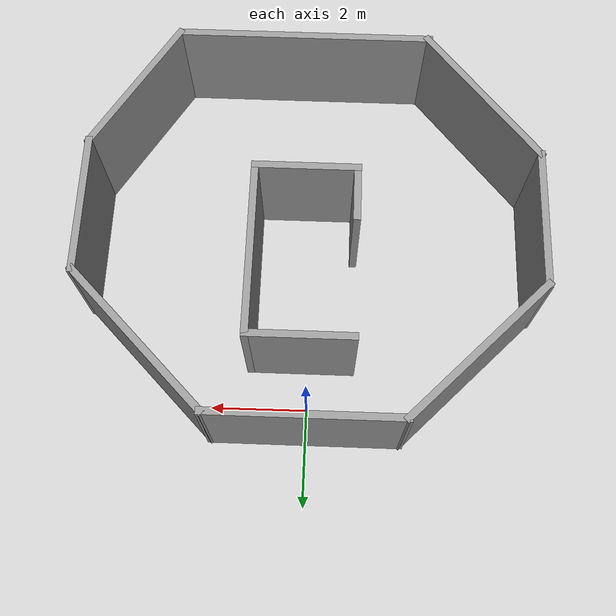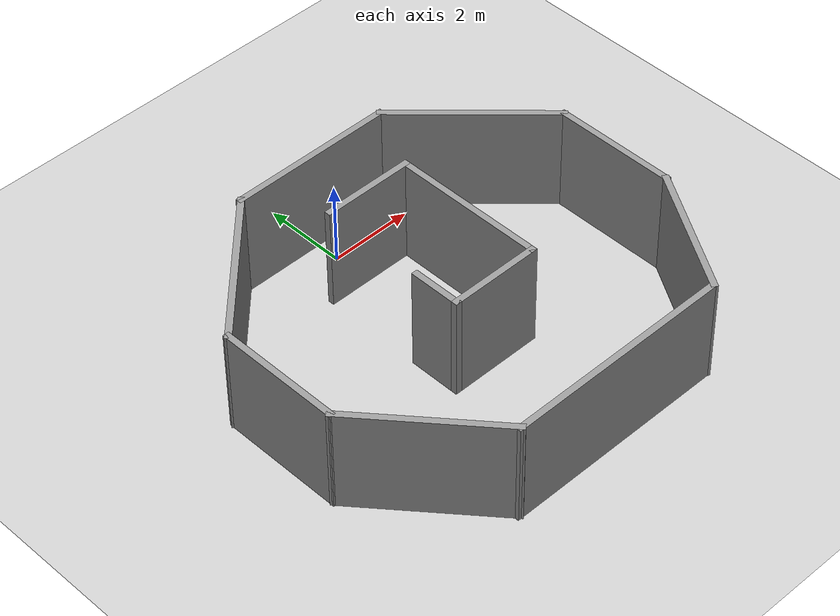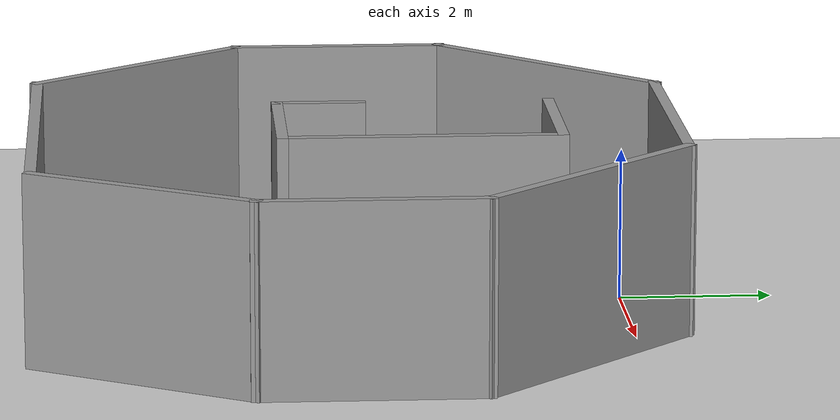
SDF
<sdf version="1.6">
 <world name="default">
  <scene><ambient>0.4 0.4 0.4 1</ambient><background>0.7 0.7 0.7 1</background><shadows>1</shadows></scene>
  <light name="sun" type="directional">
   <pose>0 0 10 0 -0 0</pose>
   <diffuse>0.8 0.8 0.8 1</diffuse>
   <specular>0.2 0.2 0.2 1</specular>
   <attenuation>
    <range>1000</range>
    <constant>0.9</constant>
    <linear>0.01</linear>
    <quadratic>0.001</quadratic>
   </attenuation>
   <direction>-0.5 0.1 -0.9</direction>
  </light>
  <model name="ground_plane">
   <static>1</static>
   <link name="link">
    <collision name="collision">
     <geometry><plane><normal>0 0 1</normal><size>100 100</size></plane></geometry>
     <surface>
      <contact><collide_bitmask>65535</collide_bitmask></contact>
      <friction><ode><mu>100</mu><mu2>50</mu2></ode></friction>
     </surface>
    </collision>
    <visual name="visual">
     <cast_shadows>0</cast_shadows>
     <geometry><plane><normal>0 0 1</normal><size>100 100</size></plane></geometry>
     <material>
      <script><uri>file://media/materials/scripts/gazebo.material</uri><name>Gazebo/Grey</name></script>
     </material>
    </visual>
   </link>
  </model>
  <physics name="default_physics" default="0" type="ode">
   <real_time_update_rate>1000</real_time_update_rate>
   <max_step_size>0.001</max_step_size>
   <real_time_factor>1</real_time_factor>
   <ode>
    <solver>
     <type>quick</type>
     <iters>150</iters>
     <precon_iters>0</precon_iters>
     <sor>1.4</sor>
     <use_dynamic_moi_rescaling>1</use_dynamic_moi_rescaling>
    </solver>
    <constraints>
     <cfm>1e-05</cfm>
     <erp>0.2</erp>
     <contact_max_correcting_vel>2000</contact_max_correcting_vel>
     <contact_surface_layer>0.01</contact_surface_layer>
    </constraints>
   </ode>
  </physics>
  <gravity>0 0 -9.8</gravity>
  <magnetic_field>6e-06 2.3e-05 -4.2e-05</magnetic_field>
  <atmosphere type="adiabatic"/>
  <spherical_coordinates>
   <surface_model>EARTH_WGS84</surface_model>
   <latitude_deg>0</latitude_deg>
   <longitude_deg>0</longitude_deg>
   <elevation>0</elevation>
   <heading_deg>0</heading_deg>
  </spherical_coordinates>
  <model name="floating_room2">
   <pose>0.004743 -3.50488 0 0 -0 0</pose>
   <link name="Wall_0">
    <collision name="Wall_0_Collision">
     <geometry><box><size>2.25 0.15 2.5</size></box></geometry>
     <pose>0 0 1.25 0 -0 0</pose>
    </collision>
    <visual name="Wall_0_Visual">
     <pose>0 0 1.25 0 -0 0</pose>
     <geometry><box><size>2.25 0.15 2.5</size></box></geometry>
     <material>
      <script><uri>file://media/materials/scripts/gazebo.material</uri><name>Gazebo/Grey</name></script>
      <ambient>1 1 1 1</ambient>
     </material>
     <meta><layer>0</layer></meta>
    </visual>
    <pose>0.145257 2.62488 0 0 -0 0</pose>
   </link>
   <link name="Wall_11">
    <collision name="Wall_11_Collision">
     <geometry><box><size>3.75 0.15 2.5</size></box></geometry>
     <pose>0 0 1.25 0 -0 0</pose>
    </collision>
    <visual name="Wall_11_Visual">
     <pose>0 0 1.25 0 -0 0</pose>
     <geometry><box><size>3.75 0.15 2.5</size></box></geometry>
     <material>
      <script><uri>file://media/materials/scripts/gazebo.material</uri><name>Gazebo/Grey</name></script>
      <ambient>1 1 1 1</ambient>
     </material>
     <meta><layer>0</layer></meta>
    </visual>
    <pose>1.19526 0.824883 0 0 -0 -1.5708</pose>
   </link>
   <link name="Wall_12">
    <collision name="Wall_12_Collision">
     <geometry><box><size>2.25 0.15 2.5</size></box></geometry>
     <pose>0 0 1.25 0 -0 0</pose>
    </collision>
    <visual name="Wall_12_Visual">
     <pose>0 0 1.25 0 -0 0</pose>
     <geometry><box><size>2.25 0.15 2.5</size></box></geometry>
     <material>
      <script><uri>file://media/materials/scripts/gazebo.material</uri><name>Gazebo/Grey</name></script>
      <ambient>1 1 1 1</ambient>
     </material>
     <meta><layer>0</layer></meta>
    </visual>
    <pose>0.145257 -0.975117 0 0 -0 3.14159</pose>
   </link>
   <link name="Wall_13">
    <collision name="Wall_13_Collision">
     <geometry><box><size>1.25 0.15 2.5</size></box></geometry>
     <pose>0 0 1.25 0 -0 0</pose>
    </collision>
    <visual name="Wall_13_Visual">
     <pose>0 0 1.25 0 -0 0</pose>
     <geometry><box><size>1.25 0.15 2.5</size></box></geometry>
     <material>
      <script><uri>file://media/materials/scripts/gazebo.material</uri><name>Gazebo/Grey</name></script>
      <ambient>1 1 1 1</ambient>
     </material>
     <meta><layer>0</layer></meta>
    </visual>
    <pose>-0.904743 -0.425117 0 0 -0 1.5708</pose>
   </link>
   <link name="Wall_15">
    <collision name="Wall_15_Collision">
     <geometry><box><size>4 0.15 2.5</size></box></geometry>
     <pose>0 0 1.25 0 -0 0</pose>
    </collision>
    <visual name="Wall_15_Visual">
     <pose>0 0 1.25 0 -0 0</pose>
     <geometry><box><size>4 0.15 2.5</size></box></geometry>
     <material>
      <script><uri>file://media/materials/scripts/gazebo.material</uri><name>Gazebo/Grey</name></script>
      <ambient>1 1 1 1</ambient>
     </material>
     <meta><layer>0</layer></meta>
    </visual>
    <pose>-3.28618 2.79125 0 0 -0 -2.35619</pose>
   </link>
   <link name="Wall_16">
    <collision name="Wall_16_Collision">
     <geometry><box><size>3 0.15 2.5</size></box></geometry>
     <pose>0 0 1.25 0 -0 0</pose>
    </collision>
    <visual name="Wall_16_Visual">
     <pose>0 0 1.25 0 -0 0</pose>
     <geometry><box><size>3 0.15 2.5</size></box></geometry>
     <material>
      <script><uri>file://media/materials/scripts/gazebo.material</uri><name>Gazebo/Grey</name></script>
      <ambient>1 1 1 1</ambient>
     </material>
     <meta><layer>0</layer></meta>
    </visual>
    <pose>-4.64736 0.005069 0 0 -0 -1.5708</pose>
   </link>
   <link name="Wall_17">
    <collision name="Wall_17_Collision">
     <geometry><box><size>3.71534 0.15 2.5</size></box></geometry>
     <pose>0 0 1.25 0 -0 0</pose>
    </collision>
    <visual name="Wall_17_Visual">
     <pose>0 0 1.25 0 -0 0</pose>
     <geometry><box><size>3.71534 0.15 2.5</size></box></geometry>
     <material>
      <script><uri>file://media/materials/scripts/gazebo.material</uri><name>Gazebo/Grey</name></script>
      <ambient>1 1 1 1</ambient>
     </material>
     <meta><layer>0</layer></meta>
    </visual>
    <pose>-3.5025 -2.78639 0 0 -0 -0.873408</pose>
   </link>
   <link name="Wall_18">
    <collision name="Wall_18_Collision">
     <geometry><box><size>5.5 0.15 2.5</size></box></geometry>
     <pose>0 0 1.25 0 -0 0</pose>
    </collision>
    <visual name="Wall_18_Visual">
     <pose>0 0 1.25 0 -0 0</pose>
     <geometry><box><size>5.5 0.15 2.5</size></box></geometry>
     <material>
      <script><uri>file://media/materials/scripts/gazebo.material</uri><name>Gazebo/Grey</name></script>
      <ambient>1 1 1 1</ambient>
     </material>
     <meta><layer>0</layer></meta>
    </visual>
    <pose>0.282381 -4.15284 0 0 -0 0</pose>
   </link>
   <link name="Wall_19">
    <collision name="Wall_19_Collision">
     <geometry><box><size>3.34497 0.15 2.5</size></box></geometry>
     <pose>0 0 1.25 0 -0 0</pose>
    </collision>
    <visual name="Wall_19_Visual">
     <pose>0 0 1.25 0 -0 0</pose>
     <geometry><box><size>3.34497 0.15 2.5</size></box></geometry>
     <material>
      <script><uri>file://media/materials/scripts/gazebo.material</uri><name>Gazebo/Grey</name></script>
      <ambient>1 1 1 1</ambient>
     </material>
     <meta><layer>0</layer></meta>
    </visual>
    <pose>3.81986 -2.78639 0 0 -0 1.02628</pose>
   </link>
   <link name="Wall_3">
    <collision name="Wall_3_Collision">
     <geometry><box><size>4 0.15 2.5</size></box></geometry>
     <pose>0 0 1.25 0 -0 0</pose>
    </collision>
    <visual name="Wall_3_Visual">
     <pose>0 0 1.25 0 -0 0</pose>
     <geometry><box><size>4 0.15 2.5</size></box></geometry>
     <material>
      <script><uri>file://media/materials/scripts/gazebo.material</uri><name>Gazebo/Grey</name></script>
      <ambient>1 1 1 1</ambient>
     </material>
     <meta><layer>0</layer></meta>
    </visual>
    <pose>0 4.15243 0 0 -0 0</pose>
   </link>
   <link name="Wall_4">
    <collision name="Wall_4_Collision">
     <geometry><box><size>4 0.15 2.5</size></box></geometry>
     <pose>0 0 1.25 0 -0 0</pose>
    </collision>
    <visual name="Wall_4_Visual">
     <pose>0 0 1.25 0 -0 0</pose>
     <geometry><box><size>4 0.15 2.5</size></box></geometry>
     <material>
      <script><uri>file://media/materials/scripts/gazebo.material</uri><name>Gazebo/Grey</name></script>
      <ambient>1 1 1 1</ambient>
     </material>
     <meta><layer>0</layer></meta>
    </visual>
    <pose>3.28618 2.79125 0 0 -0 -0.785398</pose>
   </link>
   <link name="Wall_5">
    <collision name="Wall_5_Collision">
     <geometry><box><size>3 0.15 2.5</size></box></geometry>
     <pose>0 0 1.25 0 -0 0</pose>
    </collision>
    <visual name="Wall_5_Visual">
     <pose>0 0 1.25 0 -0 0</pose>
     <geometry><box><size>3 0.15 2.5</size></box></geometry>
     <material>
      <script><uri>file://media/materials/scripts/gazebo.material</uri><name>Gazebo/Grey</name></script>
      <ambient>1 1 1 1</ambient>
     </material>
     <meta><layer>0</layer></meta>
    </visual>
    <pose>4.64736 0.005069 0 0 -0 -1.5708</pose>
   </link>
   <static>1</static>
  </model>
 </world>
</sdf>
